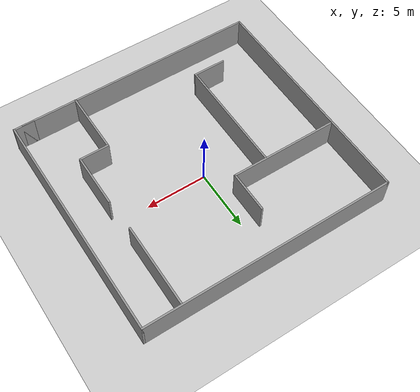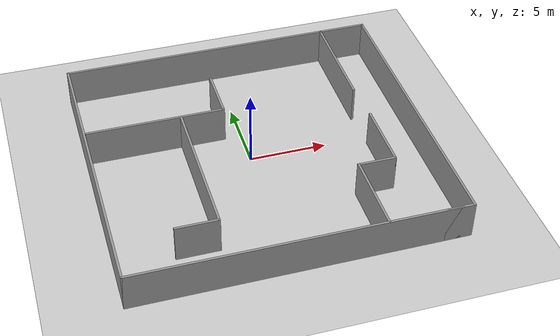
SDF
<sdf version="1.7">
 <world name="default">
  <light name="sun" type="directional">
   <pose>0 0 10 0 -0 0</pose>
   <diffuse>0.8 0.8 0.8 1</diffuse>
   <specular>0.2 0.2 0.2 1</specular>
   <attenuation>
    <range>1000</range>
    <constant>0.9</constant>
    <linear>0.01</linear>
    <quadratic>0.001</quadratic>
   </attenuation>
   <direction>-0.5 0.1 -0.9</direction>
   <spot><inner_angle>0</inner_angle><outer_angle>0</outer_angle><falloff>0</falloff></spot>
  </light>
  <model name="ground_plane">
   <static>1</static>
   <link name="link">
    <collision name="collision">
     <geometry><plane><normal>0 0 1</normal><size>100 100</size></plane></geometry>
     <surface>
      <contact><collide_bitmask>65535</collide_bitmask></contact>
      <friction><ode><mu>100</mu><mu2>50</mu2></ode></friction>
     </surface>
    </collision>
    <visual name="visual">
     <cast_shadows>0</cast_shadows>
     <geometry><plane><normal>0 0 1</normal><size>100 100</size></plane></geometry>
     <material>
      <script><uri>file://media/materials/scripts/gazebo.material</uri><name>Gazebo/Grey</name></script>
     </material>
    </visual>
   </link>
  </model>
  <gravity>0 0 -9.8</gravity>
  <magnetic_field>6e-06 2.3e-05 -4.2e-05</magnetic_field>
  <atmosphere type="adiabatic"/>
  <physics type="ode">
   <max_step_size>0.001</max_step_size>
   <real_time_factor>1</real_time_factor>
   <real_time_update_rate>1000</real_time_update_rate>
  </physics>
  <scene><ambient>0.4 0.4 0.4 1</ambient><background>0.7 0.7 0.7 1</background><shadows>1</shadows></scene>
  <audio><device>default</device></audio>
  <spherical_coordinates>
   <surface_model>EARTH_WGS84</surface_model>
   <latitude_deg>0</latitude_deg>
   <longitude_deg>0</longitude_deg>
   <elevation>0</elevation>
   <heading_deg>0</heading_deg>
  </spherical_coordinates>
  <model name="Untitled">
   <pose>0.274674 -0.570356 0 0 -0 0</pose>
   <link name="Wall_0">
    <collision name="Wall_0_Collision">
     <geometry><box><size>20.25 0.15 2.5</size></box></geometry>
     <pose>0 0 1.25 0 -0 0</pose>
    </collision>
    <visual name="Wall_0_Visual">
     <pose>0 0 1.25 0 -0 0</pose>
     <geometry><box><size>20.25 0.15 2.5</size></box></geometry>
     <material>
      <script><uri>file://media/materials/scripts/gazebo.material</uri><name>Gazebo/Grey</name></script>
      <ambient>1 1 1 1</ambient>
     </material>
     <meta><layer>0</layer></meta>
    </visual>
    <pose>-0.375 -9.55 0 0 -0 0</pose>
   </link>
   <link name="Wall_11">
    <collision name="Wall_11_Collision">
     <geometry><box><size>2.5 0.15 2.5</size></box></geometry>
     <pose>0 0 1.25 0 -0 0</pose>
    </collision>
    <visual name="Wall_11_Visual">
     <pose>0 0 1.25 0 -0 0</pose>
     <geometry><box><size>2.5 0.15 2.5</size></box></geometry>
     <material>
      <script><uri>file://media/materials/scripts/gazebo.material</uri><name>Gazebo/Grey</name></script>
      <ambient>1 1 1 1</ambient>
     </material>
     <meta><layer>0</layer></meta>
    </visual>
    <pose>6.30371 -4.4071 0 0 -0 0</pose>
   </link>
   <link name="Wall_12">
    <collision name="Wall_12_Collision">
     <geometry><box><size>4.5 0.15 2.5</size></box></geometry>
     <pose>0 0 1.25 0 -0 0</pose>
    </collision>
    <visual name="Wall_12_Visual">
     <pose>0 0 1.25 0 -0 0</pose>
     <geometry><box><size>4.5 0.15 2.5</size></box></geometry>
     <material>
      <script><uri>file://media/materials/scripts/gazebo.material</uri><name>Gazebo/Grey</name></script>
      <ambient>1 1 1 1</ambient>
     </material>
     <meta><layer>0</layer></meta>
    </visual>
    <pose>7.47871 -2.2321 0 0 -0 1.5708</pose>
   </link>
   <link name="Wall_14">
    <collision name="Wall_14_Collision">
     <geometry><box><size>7 0.15 2.5</size></box></geometry>
     <pose>0 0 1.25 0 -0 0</pose>
    </collision>
    <visual name="Wall_14_Visual">
     <pose>0 0 1.25 0 -0 0</pose>
     <geometry><box><size>7 0.15 2.5</size></box></geometry>
     <material>
      <script><uri>file://media/materials/scripts/gazebo.material</uri><name>Gazebo/Grey</name></script>
      <ambient>1 1 1 1</ambient>
     </material>
     <meta><layer>0</layer></meta>
    </visual>
    <pose>7.32218 6.08811 0 0 -0 1.5708</pose>
   </link>
   <link name="Wall_16">
    <collision name="Wall_16_Collision">
     <geometry><box><size>9 0.15 2.5</size></box></geometry>
     <pose>0 0 1.25 0 -0 0</pose>
    </collision>
    <visual name="Wall_16_Visual">
     <pose>0 0 1.25 0 -0 0</pose>
     <geometry><box><size>9 0.15 2.5</size></box></geometry>
     <material>
      <script><uri>file://media/materials/scripts/gazebo.material</uri><name>Gazebo/Grey</name></script>
      <ambient>1 1 1 1</ambient>
     </material>
     <meta><layer>0</layer></meta>
    </visual>
    <pose>-5.83203 3.01893 0 0 -0 3.14159</pose>
   </link>
   <link name="Wall_18">
    <collision name="Wall_18_Collision">
     <geometry><box><size>9.75 0.15 2.5</size></box></geometry>
     <pose>0 0 1.25 0 -0 0</pose>
    </collision>
    <visual name="Wall_18_Visual">
     <pose>0 0 1.25 0 -0 0</pose>
     <geometry><box><size>9.75 0.15 2.5</size></box></geometry>
     <material>
      <script><uri>file://media/materials/scripts/gazebo.material</uri><name>Gazebo/Grey</name></script>
      <ambient>1 1 1 1</ambient>
     </material>
     <meta><layer>0</layer></meta>
    </visual>
    <pose>-4.19846 -1.87412 0 0 -0 -1.5708</pose>
   </link>
   <link name="Wall_20">
    <collision name="Wall_20_Collision">
     <geometry><box><size>2.75 0.15 2.5</size></box></geometry>
     <pose>0 0 1.25 0 -0 0</pose>
    </collision>
    <visual name="Wall_20_Visual">
     <pose>0 0 1.25 0 -0 0</pose>
     <geometry><box><size>2.75 0.15 2.5</size></box></geometry>
     <material>
      <script><uri>file://media/materials/scripts/gazebo.material</uri><name>Gazebo/Grey</name></script>
      <ambient>1 1 1 1</ambient>
     </material>
     <meta><layer>0</layer></meta>
    </visual>
    <pose>-5.49846 -6.67412 0 0 -0 3.14159</pose>
   </link>
   <link name="Wall_22">
    <collision name="Wall_22_Collision">
     <geometry><box><size>3.5 0.15 2.5</size></box></geometry>
     <pose>0 0 1.25 0 -0 0</pose>
    </collision>
    <visual name="Wall_22_Visual">
     <pose>0 0 1.25 0 -0 0</pose>
     <geometry><box><size>3.5 0.15 2.5</size></box></geometry>
     <material>
      <script><uri>file://media/materials/scripts/gazebo.material</uri><name>Gazebo/Grey</name></script>
      <ambient>1 1 1 1</ambient>
     </material>
     <meta><layer>0</layer></meta>
    </visual>
    <pose>-1.40702 4.69393 0 0 -0 1.5708</pose>
   </link>
   <link name="Wall_3">
    <collision name="Wall_3_Collision">
     <geometry><box><size>19.25 0.15 2.5</size></box></geometry>
     <pose>0 0 1.25 0 -0 0</pose>
    </collision>
    <visual name="Wall_3_Visual">
     <pose>0 0 1.25 0 -0 0</pose>
     <geometry><box><size>19.25 0.15 2.5</size></box></geometry>
     <material>
      <script><uri>file://media/materials/scripts/gazebo.material</uri><name>Gazebo/Grey</name></script>
      <ambient>1 1 1 1</ambient>
     </material>
     <meta><layer>0</layer></meta>
    </visual>
    <pose>-10.425 -0 0 0 -0 -1.5708</pose>
   </link>
   <link name="Wall_5">
    <collision name="Wall_5_Collision">
     <geometry><box><size>21 0.15 2.5</size></box></geometry>
     <pose>0 0 1.25 0 -0 0</pose>
    </collision>
    <visual name="Wall_5_Visual">
     <pose>0 0 1.25 0 -0 0</pose>
     <geometry><box><size>21 0.15 2.5</size></box></geometry>
     <material>
      <script><uri>file://media/materials/scripts/gazebo.material</uri><name>Gazebo/Grey</name></script>
      <ambient>1 1 1 1</ambient>
     </material>
     <meta><layer>0</layer></meta>
    </visual>
    <pose>0 9.55 0 0 -0 0</pose>
   </link>
   <link name="Wall_6">
    <collision name="Wall_6_Collision">
     <geometry><box><size>19.25 0.15 2.5</size></box></geometry>
     <pose>0 0 1.25 0 -0 0</pose>
    </collision>
    <visual name="Wall_6_Visual">
     <pose>0 0 1.25 0 -0 0</pose>
     <geometry><box><size>19.25 0.15 2.5</size></box></geometry>
     <material>
      <script><uri>file://media/materials/scripts/gazebo.material</uri><name>Gazebo/Grey</name></script>
      <ambient>1 1 1 1</ambient>
     </material>
     <meta><layer>0</layer></meta>
    </visual>
    <pose>10.425 -0 0 0 -0 -1.5708</pose>
   </link>
   <link name="Wall_7">
    <collision name="Wall_7_Collision">
     <geometry><box><size>1.75 0.15 2.5</size></box></geometry>
     <pose>0 0 1.25 0 -0 0</pose>
    </collision>
    <visual name="Wall_7_Visual">
     <pose>0 0 1.25 0 -0 0</pose>
     <geometry><box><size>1.75 0.15 2.5</size></box></geometry>
     <material>
      <script><uri>file://media/materials/scripts/gazebo.material</uri><name>Gazebo/Grey</name></script>
      <ambient>1 1 1 1</ambient>
     </material>
     <meta><layer>0</layer></meta>
    </visual>
    <pose>9.625 -9.55 0 0 -0 3.14159</pose>
   </link>
   <link name="Wall_9">
    <collision name="Wall_9_Collision">
     <geometry><box><size>5.25 0.15 2.5</size></box></geometry>
     <pose>0 0 1.25 0 -0 0</pose>
    </collision>
    <visual name="Wall_9_Visual">
     <pose>0 0 1.25 0 -0 0</pose>
     <geometry><box><size>5.25 0.15 2.5</size></box></geometry>
     <material>
      <script><uri>file://media/materials/scripts/gazebo.material</uri><name>Gazebo/Grey</name></script>
      <ambient>1 1 1 1</ambient>
     </material>
     <meta><layer>0</layer></meta>
    </visual>
    <pose>5.12871 -6.95711 0 0 -0 1.5708</pose>
   </link>
   <static>1</static>
  </model>
 </world>
</sdf>
